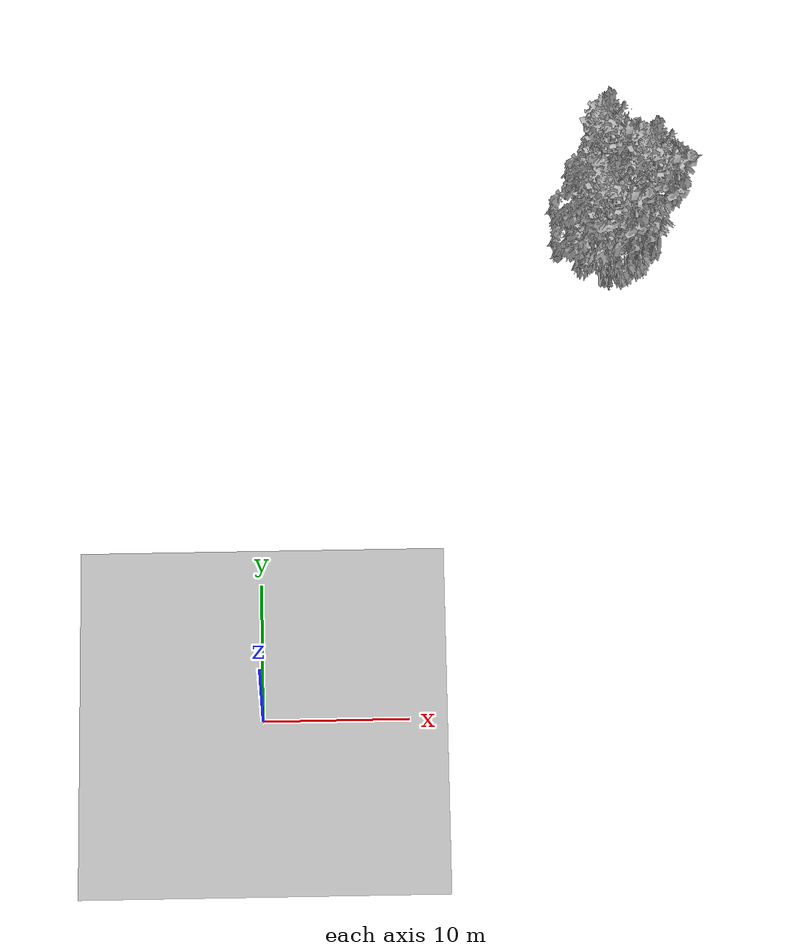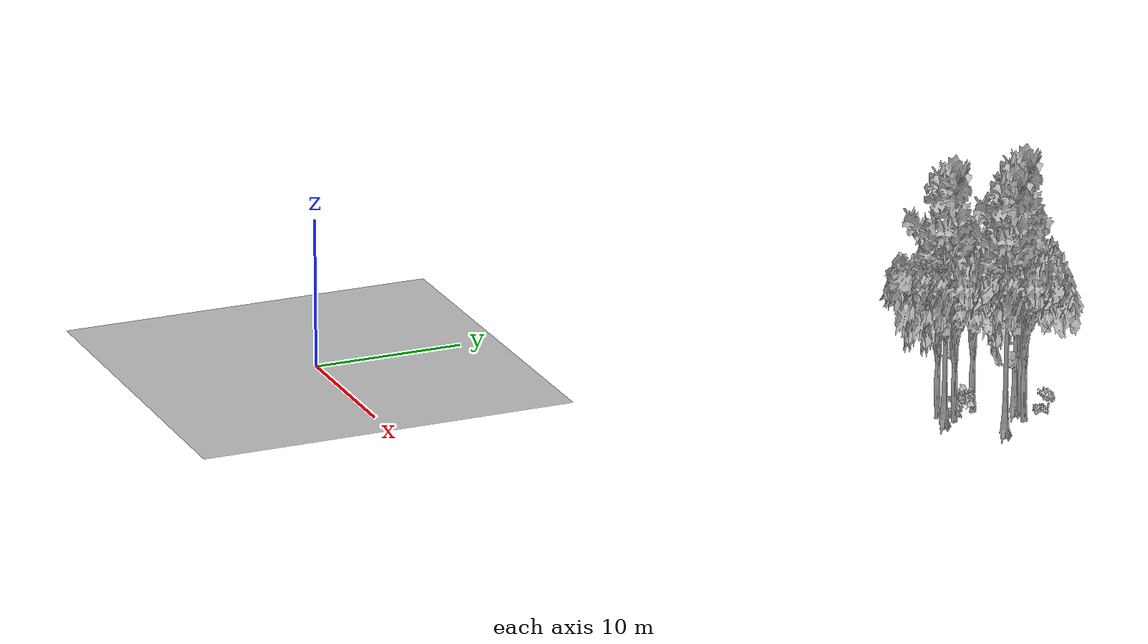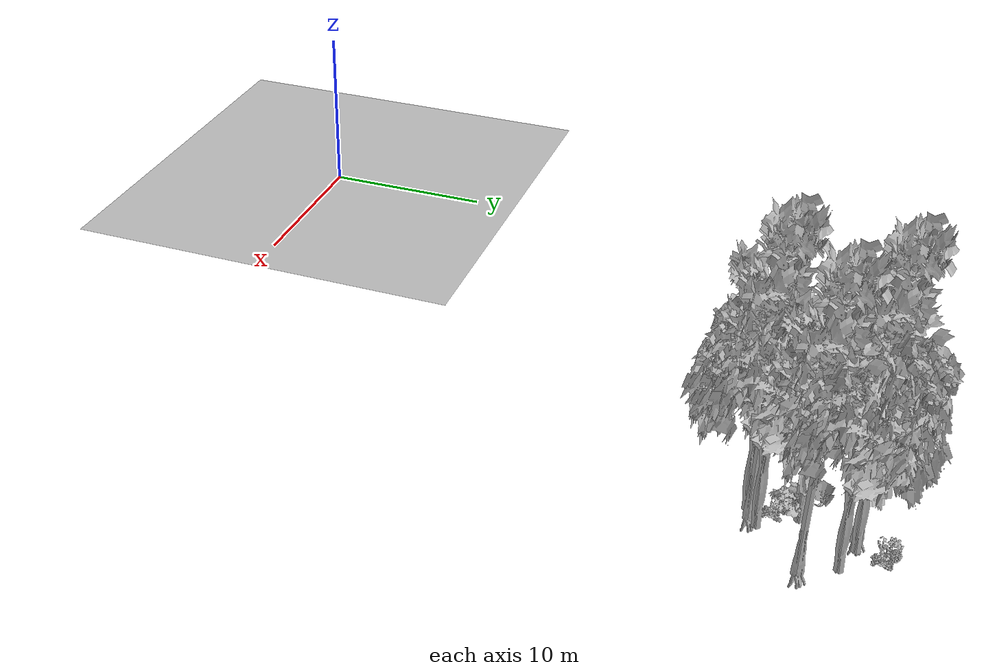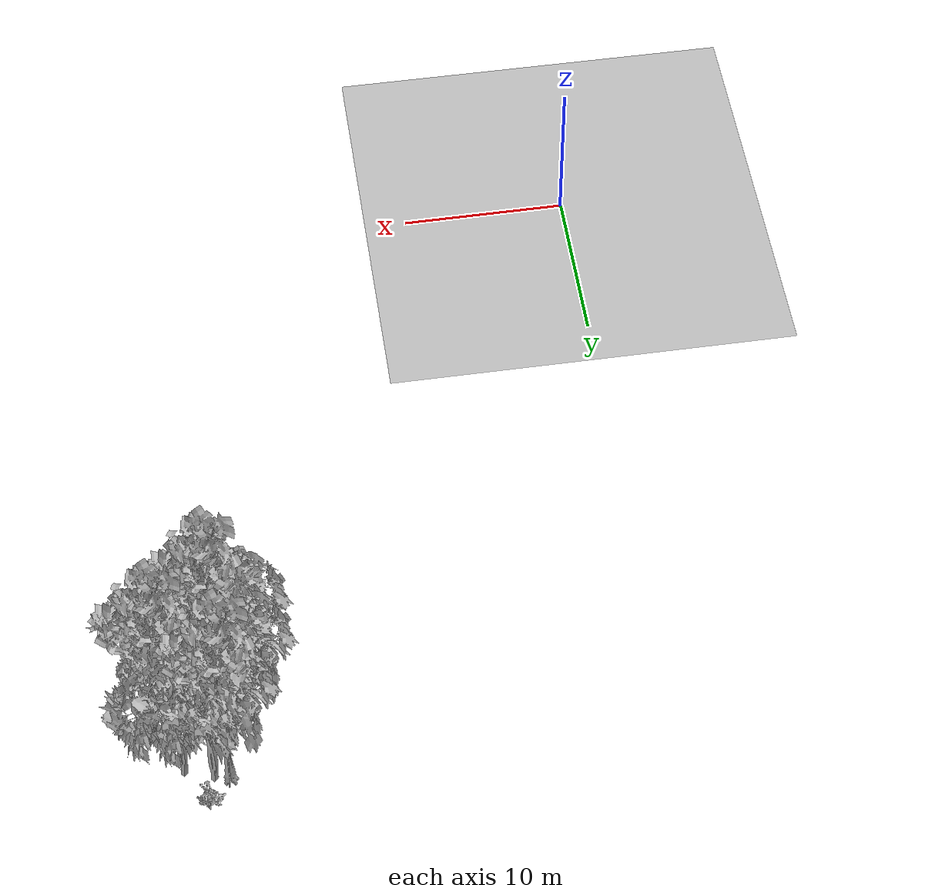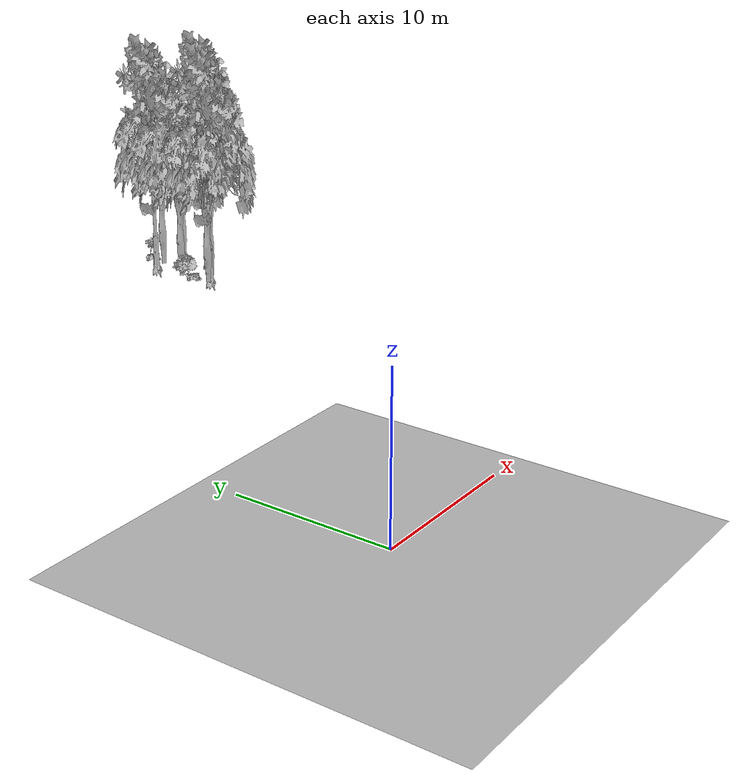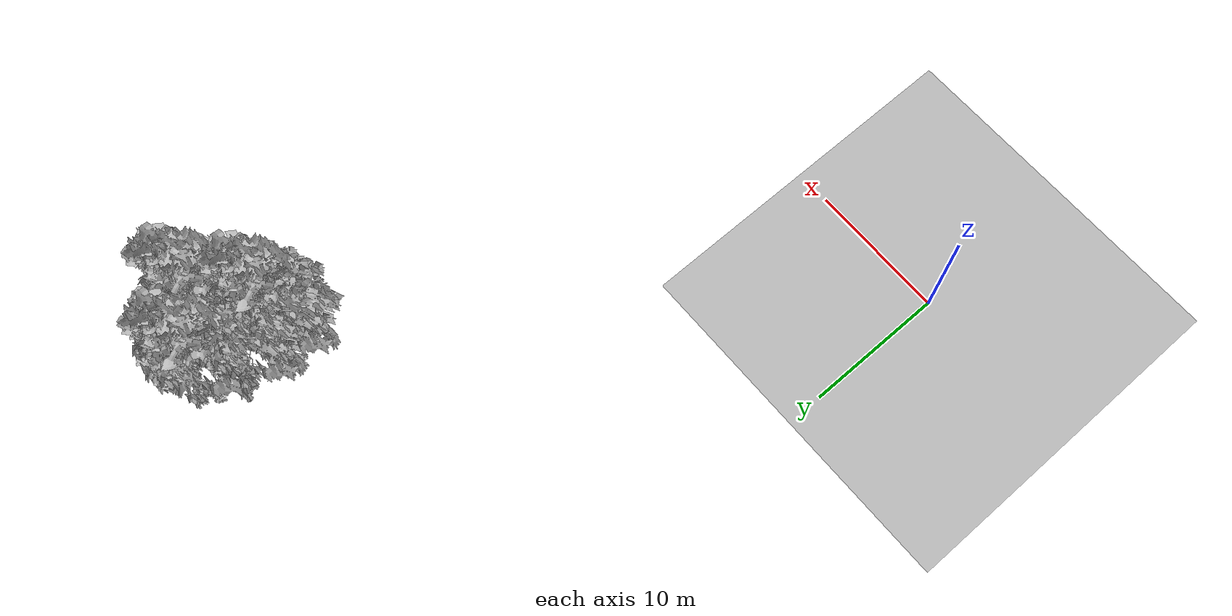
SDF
<sdf version="1.7">
 <world name="default">
  <model name="ground_plane">
   <static>1</static>
   <link name="link">
    <collision name="collision">
     <pose>-50 0 0 0 -0 0</pose>
     <geometry><plane><normal>0 0 1</normal><size>80 80</size></plane></geometry>
     <surface><contact><ode><min_depth>0.01</min_depth><max_vel>0</max_vel></ode></contact></surface>
    </collision>
    <visual name="grass">
     <cast_shadows>0</cast_shadows>
     <geometry>
      <mesh>
       <scale>0.46714285714285714 0.46714285714285714 0.1</scale>
       <uri>file://grass_plane/meshes/grass_plane.dae</uri>
      </mesh>
     </geometry>
    </visual>
   </link>
  </model>
  <model name="Tree 108">
   <static>1</static>
   <pose>24.2569626655197 32.73136635153291 0 1.57079 -0 0</pose>
   <link name="link">
    <collision name="collision">
     <geometry><mesh><scale>3.5 5 3.5</scale><uri>model://tree_2/meshes/tree_2.obj</uri></mesh></geometry>
    </collision>
    <visual name="visual">
     <geometry><mesh><scale>3.5 5 3.5</scale><uri>model://tree_2/meshes/tree_2.obj</uri></mesh></geometry>
    </visual>
   </link>
  </model>
  <model name="Tree 142">
   <static>1</static>
   <pose>24.842638037684615 32.97533103399243 0 1.57079 -0 0</pose>
   <link name="link">
    <collision name="collision">
     <geometry><mesh><scale>3.5 5 3.5</scale><uri>model://tree_9/meshes/tree_9.obj</uri></mesh></geometry>
    </collision>
    <visual name="visual">
     <geometry><mesh><scale>3.5 5 3.5</scale><uri>model://tree_9/meshes/tree_9.obj</uri></mesh></geometry>
    </visual>
   </link>
  </model>
  <model name="Tree 190">
   <static>1</static>
   <pose>27.00649747663192 37.491876329486416 0 1.57079 -0 0</pose>
   <link name="link">
    <collision name="collision">
     <geometry><mesh><scale>3.5 5 3.5</scale><uri>model://tree_2/meshes/tree_2.obj</uri></mesh></geometry>
    </collision>
    <visual name="visual">
     <geometry><mesh><scale>3.5 5 3.5</scale><uri>model://tree_2/meshes/tree_2.obj</uri></mesh></geometry>
    </visual>
   </link>
  </model>
  <model name="Tree 220">
   <static>1</static>
   <pose>27.860916169364586 35.78237910691047 0 1.57079 -0 0</pose>
   <link name="link">
    <collision name="collision">
     <geometry><mesh><scale>3.5 5 3.5</scale><uri>model://tree_9/meshes/tree_9.obj</uri></mesh></geometry>
    </collision>
    <visual name="visual">
     <geometry><mesh><scale>3.5 5 3.5</scale><uri>model://tree_9/meshes/tree_9.obj</uri></mesh></geometry>
    </visual>
   </link>
  </model>
  <model name="Tree 397">
   <static>1</static>
   <pose>24.658734840398324 38.04269079828845 0 1.57079 -0 0</pose>
   <link name="link">
    <collision name="collision">
     <geometry><mesh><scale>3.5 5 3.5</scale><uri>model://tree_9/meshes/tree_9.obj</uri></mesh></geometry>
    </collision>
    <visual name="visual">
     <geometry><mesh><scale>3.5 5 3.5</scale><uri>model://tree_9/meshes/tree_9.obj</uri></mesh></geometry>
    </visual>
   </link>
  </model>
  <model name="Tree 424">
   <static>1</static>
   <pose>24.212254682743193 35.231013940203596 0 1.57079 -0 0</pose>
   <link name="link">
    <collision name="collision">
     <geometry><mesh><scale>3.5 5 3.5</scale><uri>model://tree_2/meshes/tree_2.obj</uri></mesh></geometry>
    </collision>
    <visual name="visual">
     <geometry><mesh><scale>3.5 5 3.5</scale><uri>model://tree_2/meshes/tree_2.obj</uri></mesh></geometry>
    </visual>
   </link>
  </model>
  <model name="Tree 440">
   <static>1</static>
   <pose>25.413613698586516 38.06535003930239 0 1.57079 -0 0</pose>
   <link name="link">
    <collision name="collision">
     <geometry><mesh><scale>3.5 5 3.5</scale><uri>model://tree_2/meshes/tree_2.obj</uri></mesh></geometry>
    </collision>
    <visual name="visual">
     <geometry><mesh><scale>3.5 5 3.5</scale><uri>model://tree_2/meshes/tree_2.obj</uri></mesh></geometry>
    </visual>
   </link>
  </model>
  <model name="Tree 606">
   <static>1</static>
   <pose>25.350448682693496 33.38055860282476 0 1.57079 -0 0</pose>
   <link name="link">
    <collision name="collision">
     <geometry><mesh><scale>3.5 5 3.5</scale><uri>model://tree_2/meshes/tree_2.obj</uri></mesh></geometry>
    </collision>
    <visual name="visual">
     <geometry><mesh><scale>3.5 5 3.5</scale><uri>model://tree_2/meshes/tree_2.obj</uri></mesh></geometry>
    </visual>
   </link>
  </model>
  <model name="Bush 10">
   <static>1</static>
   <pose>26.00342202740454 39.787824021223045 0 1.57079 -0 0</pose>
   <link name="link">
    <collision name="collision">
     <geometry><mesh><scale>2 2 2</scale><uri>model://bush_5/meshes/bush_5.obj</uri></mesh></geometry>
     <surface><contact><collide_without_contact>false</collide_without_contact></contact></surface>
    </collision>
    <visual name="visual">
     <geometry><mesh><scale>2 2 2</scale><uri>model://bush_5/meshes/bush_5.obj</uri></mesh></geometry>
    </visual>
   </link>
  </model>
  <model name="Bush 157">
   <static>1</static>
   <pose>24.12662095813689 33.95186952185159 0 1.57079 -0 0</pose>
   <link name="link">
    <collision name="collision">
     <geometry><mesh><scale>2 2 2</scale><uri>model://bush_2/meshes/bush_2.obj</uri></mesh></geometry>
     <surface><contact><collide_without_contact>false</collide_without_contact></contact></surface>
    </collision>
    <visual name="visual">
     <geometry><mesh><scale>2 2 2</scale><uri>model://bush_2/meshes/bush_2.obj</uri></mesh></geometry>
    </visual>
   </link>
  </model>
  <model name="Bush 240">
   <static>1</static>
   <pose>24.08156082103872 34.50889690769246 0 1.57079 -0 0</pose>
   <link name="link">
    <collision name="collision">
     <geometry><mesh><scale>2 2 2</scale><uri>model://bush_1/meshes/bush_1.obj</uri></mesh></geometry>
     <surface><contact><collide_without_contact>false</collide_without_contact></contact></surface>
    </collision>
    <visual name="visual">
     <geometry><mesh><scale>2 2 2</scale><uri>model://bush_1/meshes/bush_1.obj</uri></mesh></geometry>
    </visual>
   </link>
  </model>
  <model name="Bush 265">
   <static>1</static>
   <pose>25.65264719891924 39.32157807915908 0 1.57079 -0 0</pose>
   <link name="link">
    <collision name="collision">
     <geometry><mesh><scale>2 2 2</scale><uri>model://bush_2/meshes/bush_2.obj</uri></mesh></geometry>
     <surface><contact><collide_without_contact>false</collide_without_contact></contact></surface>
    </collision>
    <visual name="visual">
     <geometry><mesh><scale>2 2 2</scale><uri>model://bush_2/meshes/bush_2.obj</uri></mesh></geometry>
    </visual>
   </link>
  </model>
 </world>
</sdf>
